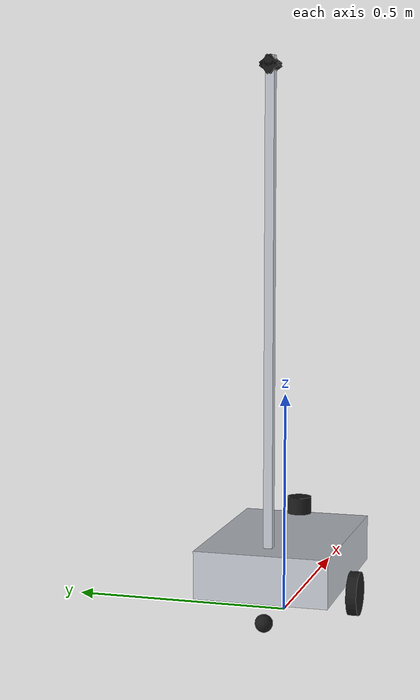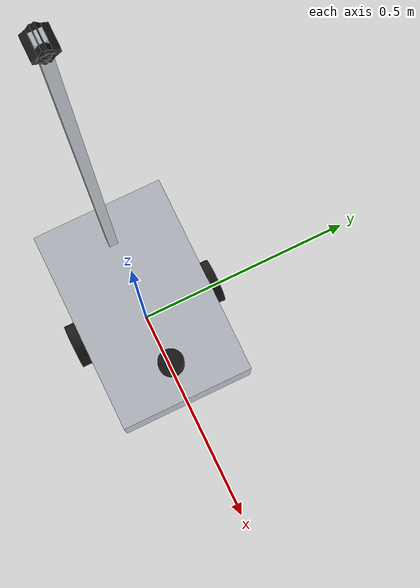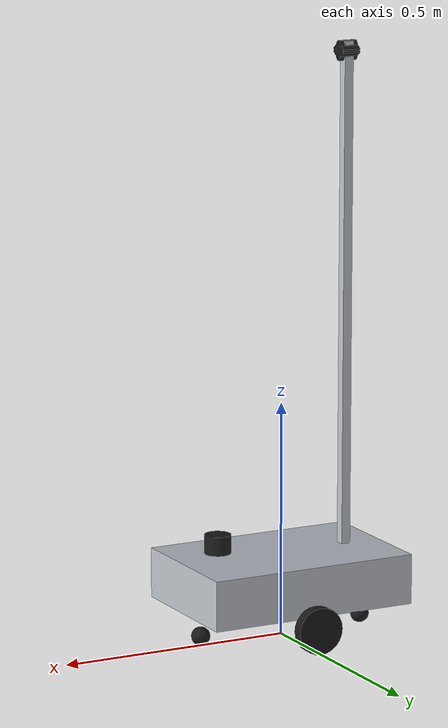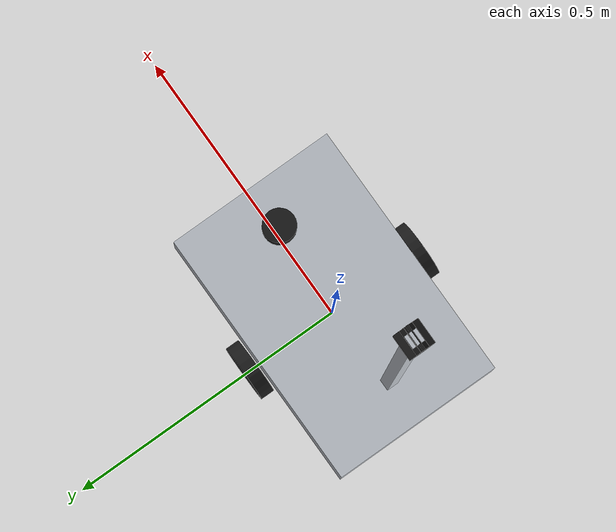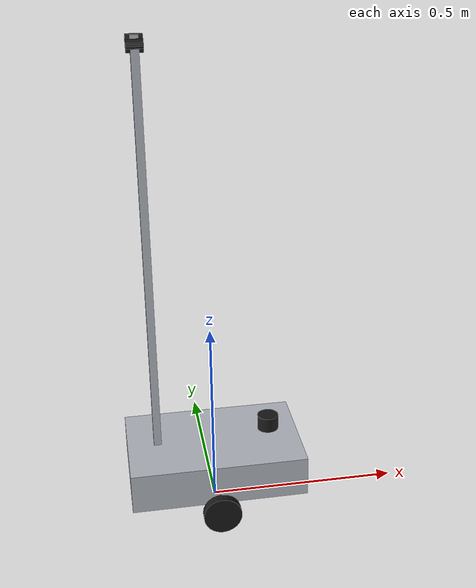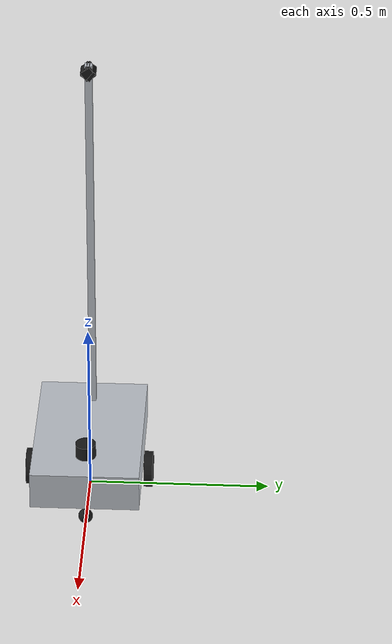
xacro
<?xml version="1.0"?>
<robot name="agrirover_gh1" xmlns:xacro="http://www.ros.org/wiki/xacro">
  <xacro:arg name="use_gazebo" default="false"/>
  <xacro:property name="wheel_radius" value="0.050"/>
  <xacro:property name="wheel_width" value="0.024"/>
  <xacro:property name="track" value="0.330"/>
  <xacro:property name="deck_length" value="0.460"/>
  <xacro:property name="deck_width" value="0.300"/>
  <xacro:property name="deck_bottom_z" value="0.073"/>
  <xacro:property name="deck_top_z" value="0.180"/>
  <xacro:property name="caster_x" value="0.190"/>
  <xacro:property name="lidar_x" value="0.150"/>
  <xacro:property name="lidar_z" value="0.215"/>
  <xacro:property name="mast_x" value="-0.150"/>
  <xacro:property name="mast_top_z" value="1.250"/>
  <xacro:property name="camera_z" value="1.230"/>
  <xacro:property name="camera_tilt" value="${radians(35.0)}"/>
  <xacro:property name="body_mass" value="8.0"/>

  <material name="alu"><color rgba="0.75 0.77 0.8 1"/></material>
  <material name="black"><color rgba="0.1 0.1 0.1 1"/></material>

  <link name="base_footprint"/>
  <joint name="base_joint" type="fixed">
    <parent link="base_footprint"/><child link="base_link"/>
    <origin xyz="0 0 ${wheel_radius}" rpy="0 0 0"/>
  </joint>

  <link name="base_link">
    <visual>
      <origin xyz="0 0 ${(deck_bottom_z + deck_top_z) / 2 - wheel_radius}"/>
      <geometry><box size="${deck_length} ${deck_width} ${deck_top_z - deck_bottom_z}"/></geometry>
      <material name="alu"/>
    </visual>
    <collision>
      <origin xyz="0 0 ${(deck_bottom_z + deck_top_z) / 2 - wheel_radius}"/>
      <geometry><box size="${deck_length + 0.04} ${deck_width} ${deck_top_z - deck_bottom_z}"/></geometry>
    </collision>
    <inertial>  <!-- lumped body: mass budget minus wheels; box inertia about the CG from the mechanical calcs -->
      <origin xyz="-0.02 0 0.10"/>
      <mass value="${body_mass}"/>
      <inertia ixx="0.12" ixy="0" ixz="0" iyy="0.20" iyz="0" izz="0.20"/>
    </inertial>
  </link>

  <xacro:macro name="wheel" params="name side">
    <link name="${name}_wheel">
      <visual><origin rpy="${pi/2} 0 0"/><geometry><cylinder radius="${wheel_radius}" length="${wheel_width}"/></geometry><material name="black"/></visual>
      <collision><origin rpy="${pi/2} 0 0"/><geometry><cylinder radius="${wheel_radius}" length="${wheel_width}"/></geometry></collision>
      <inertial><mass value="0.25"/><inertia ixx="0.00017" ixy="0" ixz="0" iyy="0.00031" iyz="0" izz="0.00017"/></inertial>
    </link>
    <joint name="${name}_wheel_joint" type="continuous">
      <parent link="base_link"/><child link="${name}_wheel"/>
      <origin xyz="0 ${side * track / 2} 0"/><axis xyz="0 1 0"/>
      <limit effort="1.0" velocity="15.7"/>
    </joint>
  </xacro:macro>
  <xacro:wheel name="left" side="1"/>
  <xacro:wheel name="right" side="-1"/>

  <xacro:macro name="caster" params="name x">
    <link name="${name}_caster">
      <visual><geometry><sphere radius="0.020"/></geometry><material name="black"/></visual>
      <collision><geometry><sphere radius="0.020"/></geometry></collision>
      <inertial><mass value="0.15"/><inertia ixx="0.00003" ixy="0" ixz="0" iyy="0.00003" iyz="0" izz="0.00003"/></inertial>
    </link>
    <joint name="${name}_caster_joint" type="fixed">
      <parent link="base_link"/><child link="${name}_caster"/>
      <origin xyz="${x} 0 ${0.020 - wheel_radius}"/>
    </joint>
  </xacro:macro>
  <xacro:caster name="front" x="${caster_x}"/>
  <xacro:caster name="rear" x="${-caster_x}"/>

  <link name="lidar_link">
    <visual><geometry><cylinder radius="0.028" length="0.04"/></geometry><material name="black"/></visual>
    <inertial><mass value="0.11"/><inertia ixx="0.00004" ixy="0" ixz="0" iyy="0.00004" iyz="0" izz="0.00004"/></inertial>
  </link>
  <joint name="lidar_joint" type="fixed">
    <parent link="base_footprint"/><child link="lidar_link"/><origin xyz="${lidar_x} 0 ${lidar_z}"/>
  </joint>

  <link name="imu_link"/>
  <joint name="imu_joint" type="fixed"><parent link="base_link"/><child link="imu_link"/><origin xyz="0.08 0.04 0.06"/></joint>

  <link name="mast_link">
    <visual><origin xyz="0 0 ${(mast_top_z - deck_top_z) / 2}"/><geometry><box size="0.02 0.02 ${mast_top_z - deck_top_z}"/></geometry><material name="alu"/></visual>
    <collision><origin xyz="0 0 ${(mast_top_z - deck_top_z) / 2}"/><geometry><box size="0.02 0.02 ${mast_top_z - deck_top_z}"/></geometry></collision>
    <inertial><origin xyz="0 0 0.6"/><mass value="0.9"/><inertia ixx="0.11" ixy="0" ixz="0" iyy="0.11" iyz="0" izz="0.0002"/></inertial>
  </link>
  <joint name="mast_joint" type="fixed"><parent link="base_footprint"/><child link="mast_link"/><origin xyz="${mast_x} 0 ${deck_top_z}"/></joint>

  <!-- camera_*_link: x forward (viewing direction), tilted down; *_optical_frame follows the image convention (z forward) -->
  <xacro:macro name="camera" params="name yaw">
    <link name="camera_${name}_link"><visual><geometry><box size="0.03 0.04 0.03"/></geometry><material name="black"/></visual></link>
    <joint name="camera_${name}_joint" type="fixed">
      <parent link="base_footprint"/><child link="camera_${name}_link"/>
      <origin xyz="${mast_x} 0 ${camera_z}" rpy="0 ${camera_tilt} ${yaw}"/>
    </joint>
    <link name="camera_${name}_optical_frame"/>
    <joint name="camera_${name}_optical_joint" type="fixed">
      <parent link="camera_${name}_link"/><child link="camera_${name}_optical_frame"/><origin rpy="${-pi/2} 0 ${-pi/2}"/>
    </joint>
  </xacro:macro>
  <xacro:camera name="left" yaw="${pi/2}"/>
  <xacro:camera name="right" yaw="${-pi/2}"/>

  <link name="env_link"/>
  <joint name="env_joint" type="fixed"><parent link="mast_link"/><child link="env_link"/><origin xyz="0.056 0 0.94"/></joint>

  <xacro:if value="$(arg use_gazebo)">
    <gazebo>
      <plugin filename="gz-sim-diff-drive-system" name="gz::sim::systems::DiffDrive">
        <left_joint>left_wheel_joint</left_joint><right_joint>right_wheel_joint</right_joint>
        <wheel_separation>${track}</wheel_separation><wheel_radius>${wheel_radius}</wheel_radius>
        <max_linear_acceleration>0.5</max_linear_acceleration><max_linear_velocity>0.5</max_linear_velocity>
        <topic>cmd_vel</topic><odom_topic>odom</odom_topic><tf_topic>tf</tf_topic>
        <frame_id>odom</frame_id><child_frame_id>base_footprint</child_frame_id><odom_publish_frequency>50</odom_publish_frequency>
      </plugin>
      <plugin filename="gz-sim-joint-state-publisher-system" name="gz::sim::systems::JointStatePublisher"/>
    </gazebo>
    <gazebo reference="front_caster"><mu1>0.02</mu1><mu2>0.02</mu2></gazebo>
    <gazebo reference="rear_caster"><mu1>0.02</mu1><mu2>0.02</mu2></gazebo>
    <gazebo reference="lidar_link">
      <sensor name="lidar" type="gpu_lidar">
        <topic>scan</topic><gz_frame_id>lidar_link</gz_frame_id><update_rate>10</update_rate>
        <lidar><scan><horizontal><samples>500</samples><min_angle>-3.14159</min_angle><max_angle>3.14159</max_angle></horizontal></scan>
          <range><min>0.05</min><max>12.0</max><resolution>0.01</resolution></range><noise><type>gaussian</type><mean>0</mean><stddev>0.01</stddev></noise></lidar>
      </sensor>
    </gazebo>
    <gazebo reference="imu_link"><sensor name="imu" type="imu"><topic>imu/data_raw</topic><gz_frame_id>imu_link</gz_frame_id><update_rate>100</update_rate></sensor></gazebo>
    <xacro:macro name="gz_camera" params="name">
      <gazebo reference="camera_${name}_link">
        <sensor name="camera_${name}" type="camera">
          <topic>camera_${name}/image_raw</topic><gz_frame_id>camera_${name}_optical_frame</gz_frame_id><update_rate>5</update_rate>
          <camera><horizontal_fov>1.2217</horizontal_fov><image><width>1280</width><height>720</height></image><clip><near>0.05</near><far>10</far></clip></camera>
        </sensor>
      </gazebo>
    </xacro:macro>
    <xacro:gz_camera name="left"/>
    <xacro:gz_camera name="right"/>
  </xacro:if>
</robot>
